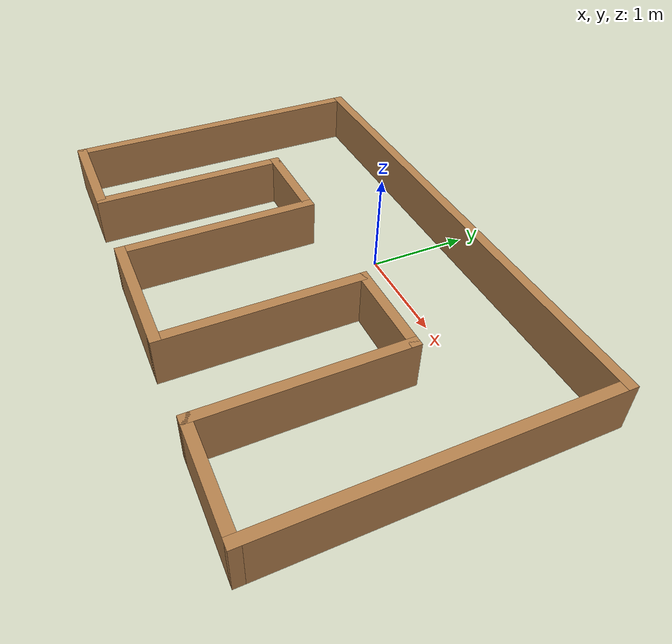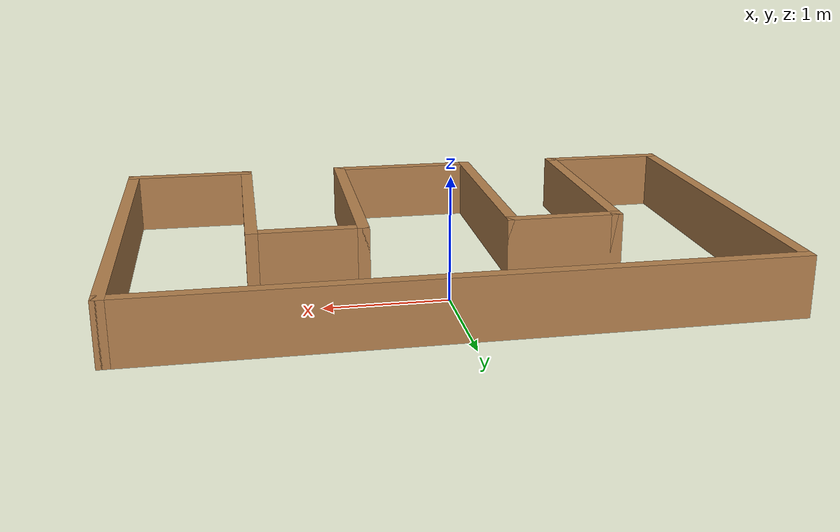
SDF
<?xml version='1.0'?>
<sdf version='1.7'>
  <model name='new_stage_5_3m_small'>
    <pose>0.0 0.0 0 0 -0 0</pose>
    <link name='Wall_0'>
      <collision name='Wall_0_Collision'>
        <geometry>
          <box>
            <size>5.2 0.1 0.5</size>
          </box>
        </geometry>
        <pose>0 0 0.25 0 -0 0</pose>
      </collision>
      <visual name='Wall_0_Visual'>
        <pose>0 0 0.25 0 -0 0</pose>
        <geometry>
          <box>
            <size>5.2 0.1 0.5</size>
          </box>
        </geometry>
        <material>
          <script>
            <uri>file://media/materials/scripts/gazebo.material</uri>
            <name>Gazebo/Wood</name>
          </script>
          <ambient>1 0.764706 0.305882 1</ambient>
        </material>
        <meta>
          <layer>0</layer>
        </meta>
      </visual>
      <pose>0 0.8 0 0 -0 0</pose>
    </link>
    <link name='Wall_10'>
      <collision name='Wall_10_Collision'>
        <geometry>
          <box>
            <size>2.02 0.1 0.5</size>
          </box>
        </geometry>
        <pose>0 0 0.25 0 -0 0</pose>
      </collision>
      <visual name='Wall_10_Visual'>
        <pose>0 0 0.25 0 -0 0</pose>
        <geometry>
          <box>
            <size>2.02 0.1 0.5</size>
          </box>
        </geometry>
        <material>
          <script>
            <uri>file://media/materials/scripts/gazebo.material</uri>
            <name>Gazebo/Wood</name>
          </script>
          <ambient>1 0.764706 0.305882 1</ambient>
        </material>
        <meta>
          <layer>0</layer>
        </meta>
      </visual>
      <pose>-1.51 -1.44 0 0 -0 1.5708</pose>
    </link>
    <link name='Wall_14'>
      <collision name='Wall_14_Collision'>
        <geometry>
          <box>
            <size>0.99 0.1 0.5</size>
          </box>
        </geometry>
        <pose>0 0 0.25 0 -0 0</pose>
      </collision>
      <visual name='Wall_14_Visual'>
        <pose>0 0 0.25 0 -0 0</pose>
        <geometry>
          <box>
            <size>0.99 0.1 0.5</size>
          </box>
        </geometry>
        <material>
          <script>
            <uri>file://media/materials/scripts/gazebo.material</uri>
            <name>Gazebo/Wood</name>
          </script>
          <ambient>1 0.764706 0.305882 1</ambient>
        </material>
        <meta>
          <layer>0</layer>
        </meta>
      </visual>
      <pose>-1.065 -0.48 0 0 -0 0</pose>
    </link>
    <link name='Wall_16'>
      <collision name='Wall_16_Collision'>
        <geometry>
          <box>
            <size>2.02 0.1 0.5</size>
          </box>
        </geometry>
        <pose>0 0 0.25 0 -0 0</pose>
      </collision>
      <visual name='Wall_16_Visual'>
        <pose>0 0 0.25 0 -0 0</pose>
        <geometry>
          <box>
            <size>2.02 0.1 0.5</size>
          </box>
        </geometry>
        <material>
          <script>
            <uri>file://media/materials/scripts/gazebo.material</uri>
            <name>Gazebo/Wood</name>
          </script>
          <ambient>1 0.764706 0.305882 1</ambient>
        </material>
        <meta>
          <layer>0</layer>
        </meta>
      </visual>
      <pose>-0.62 -1.44 0 0 -0 -1.5708</pose>
    </link>
    <link name='Wall_18'>
      <collision name='Wall_18_Collision'>
        <geometry>
          <box>
            <size>1.34 0.1 0.5</size>
          </box>
        </geometry>
        <pose>0 0 0.25 0 -0 0</pose>
      </collision>
      <visual name='Wall_18_Visual'>
        <pose>0 0 0.25 0 -0 0</pose>
        <geometry>
          <box>
            <size>1.34 0.1 0.5</size>
          </box>
        </geometry>
        <material>
          <script>
            <uri>file://media/materials/scripts/gazebo.material</uri>
            <name>Gazebo/Wood</name>
          </script>
          <ambient>1 0.764706 0.305882 1</ambient>
        </material>
        <meta>
          <layer>0</layer>
        </meta>
      </visual>
      <pose>0 -2.4 0 0 -0 0</pose>
    </link>
    <link name='Wall_2'>
      <collision name='Wall_2_Collision'>
        <geometry>
          <box>
            <size>3.3 0.1 0.5</size>
          </box>
        </geometry>
        <pose>0 0 0.25 0 -0 0</pose>
      </collision>
      <visual name='Wall_2_Visual'>
        <pose>0 0 0.25 0 -0 0</pose>
        <geometry>
          <box>
            <size>3.3 0.1 0.5</size>
          </box>
        </geometry>
        <material>
          <script>
            <uri>file://media/materials/scripts/gazebo.material</uri>
            <name>Gazebo/Wood</name>
          </script>
          <ambient>1 0.764706 0.305882 1</ambient>
        </material>
        <meta>
          <layer>0</layer>
        </meta>
      </visual>
      <pose>-2.55 -0.8 0 0 -0 -1.5708</pose>
    </link>
    <link name='Wall_20'>
      <collision name='Wall_20_Collision'>
        <geometry>
          <box>
            <size>2.02 0.1 0.5</size>
          </box>
        </geometry>
        <pose>0 0 0.25 0 -0 0</pose>
      </collision>
      <visual name='Wall_20_Visual'>
        <pose>0 0 0.25 0 -0 0</pose>
        <geometry>
          <box>
            <size>2.02 0.1 0.5</size>
          </box>
        </geometry>
        <material>
          <script>
            <uri>file://media/materials/scripts/gazebo.material</uri>
            <name>Gazebo/Wood</name>
          </script>
          <ambient>1 0.764706 0.305882 1</ambient>
        </material>
        <meta>
          <layer>0</layer>
        </meta>
      </visual>
      <pose>0.62 -1.44 0 0 -0 1.5708</pose>
    </link>
    <link name='Wall_22'>
      <collision name='Wall_22_Collision'>
        <geometry>
          <box>
            <size>0.99 0.1 0.5</size>
          </box>
        </geometry>
        <pose>0 0 0.25 0 -0 0</pose>
      </collision>
      <visual name='Wall_22_Visual'>
        <pose>0 0 0.25 0 -0 0</pose>
        <geometry>
          <box>
            <size>0.99 0.1 0.5</size>
          </box>
        </geometry>
        <material>
          <script>
            <uri>file://media/materials/scripts/gazebo.material</uri>
            <name>Gazebo/Wood</name>
          </script>
          <ambient>1 0.764706 0.305882 1</ambient>
        </material>
        <meta>
          <layer>0</layer>
        </meta>
      </visual>
      <pose>1.065 -0.48 0 0 -0 0</pose>
    </link>
    <link name='Wall_24'>
      <collision name='Wall_24_Collision'>
        <geometry>
          <box>
            <size>2.02 0.1 0.5</size>
          </box>
        </geometry>
        <pose>0 0 0.25 0 -0 0</pose>
      </collision>
      <visual name='Wall_24_Visual'>
        <pose>0 0 0.25 0 -0 0</pose>
        <geometry>
          <box>
            <size>2.02 0.1 0.5</size>
          </box>
        </geometry>
        <material>
          <script>
            <uri>file://media/materials/scripts/gazebo.material</uri>
            <name>Gazebo/Wood</name>
          </script>
          <ambient>1 0.764706 0.305882 1</ambient>
        </material>
        <meta>
          <layer>0</layer>
        </meta>
      </visual>
      <pose>1.51 -1.44 0 0 -0 -1.5708</pose>
    </link>
    <link name='Wall_26'>
      <collision name='Wall_26_Collision'>
        <geometry>
          <box>
            <size>1.14 0.1 0.5</size>
          </box>
        </geometry>
        <pose>0 0 0.25 0 -0 0</pose>
      </collision>
      <visual name='Wall_26_Visual'>
        <pose>0 0 0.25 0 -0 0</pose>
        <geometry>
          <box>
            <size>1.14 0.1 0.5</size>
          </box>
        </geometry>
        <material>
          <script>
            <uri>file://media/materials/scripts/gazebo.material</uri>
            <name>Gazebo/Wood</name>
          </script>
          <ambient>1 0.764706 0.305882 1</ambient>
        </material>
        <meta>
          <layer>0</layer>
        </meta>
      </visual>
      <pose>2.03 -2.4 0 0 -0 0</pose>
    </link>
    <link name='Wall_28'>
      <collision name='Wall_28_Collision'>
        <geometry>
          <box>
            <size>3.3 0.1 0.5</size>
          </box>
        </geometry>
        <pose>0 0 0.25 0 -0 0</pose>
      </collision>
      <visual name='Wall_28_Visual'>
        <pose>0 0 0.25 0 -0 0</pose>
        <geometry>
          <box>
            <size>3.3 0.1 0.5</size>
          </box>
        </geometry>
        <material>
          <script>
            <uri>file://media/materials/scripts/gazebo.material</uri>
            <name>Gazebo/Wood</name>
          </script>
          <ambient>1 0.764706 0.305882 1</ambient>
        </material>
        <meta>
          <layer>0</layer>
        </meta>
      </visual>
      <pose>2.55 -0.8 0 0 -0 -1.5708</pose>
    </link>
    <link name='Wall_8'>
      <collision name='Wall_8_Collision'>
        <geometry>
          <box>
            <size>1.14 0.1 0.5</size>
          </box>
        </geometry>
        <pose>0 0 0.25 0 -0 0</pose>
      </collision>
      <visual name='Wall_8_Visual'>
        <pose>0 0 0.25 0 -0 0</pose>
        <geometry>
          <box>
            <size>1.14 0.1 0.5</size>
          </box>
        </geometry>
        <material>
          <script>
            <uri>file://media/materials/scripts/gazebo.material</uri>
            <name>Gazebo/Wood</name>
          </script>
          <ambient>1 0.764706 0.305882 1</ambient>
        </material>
        <meta>
          <layer>0</layer>
        </meta>
      </visual>
      <pose>-2.03 -2.4 0 0 -0 0</pose>
    </link>
    <static>1</static>
  </model>
</sdf>
